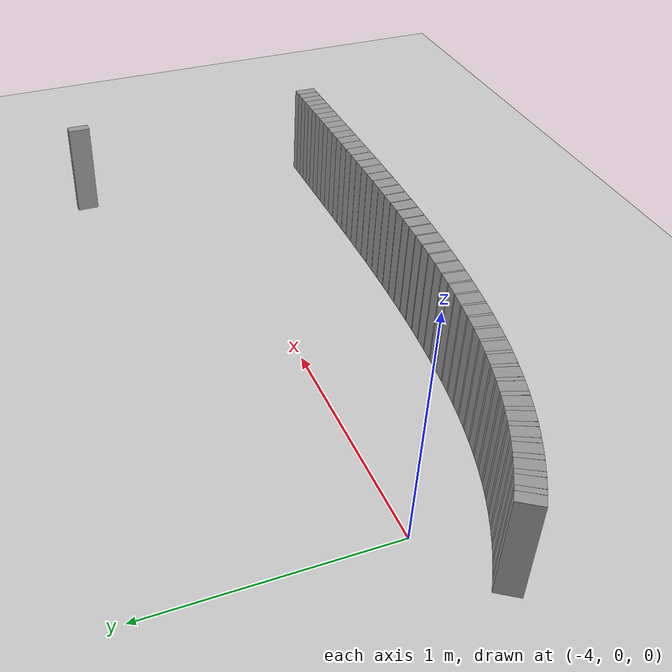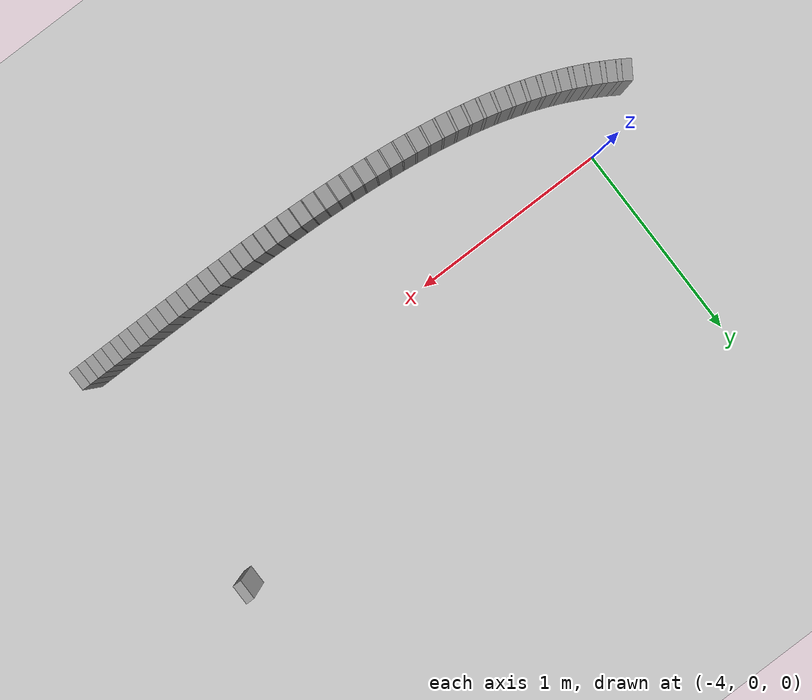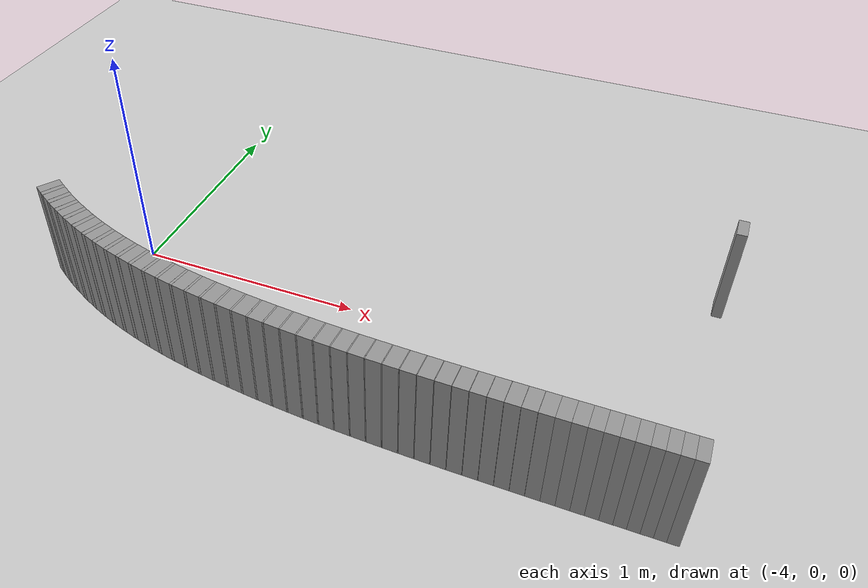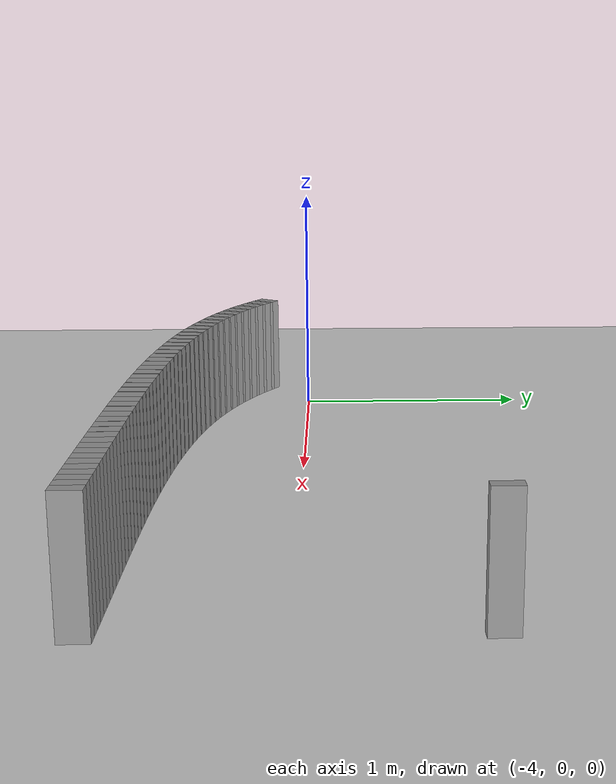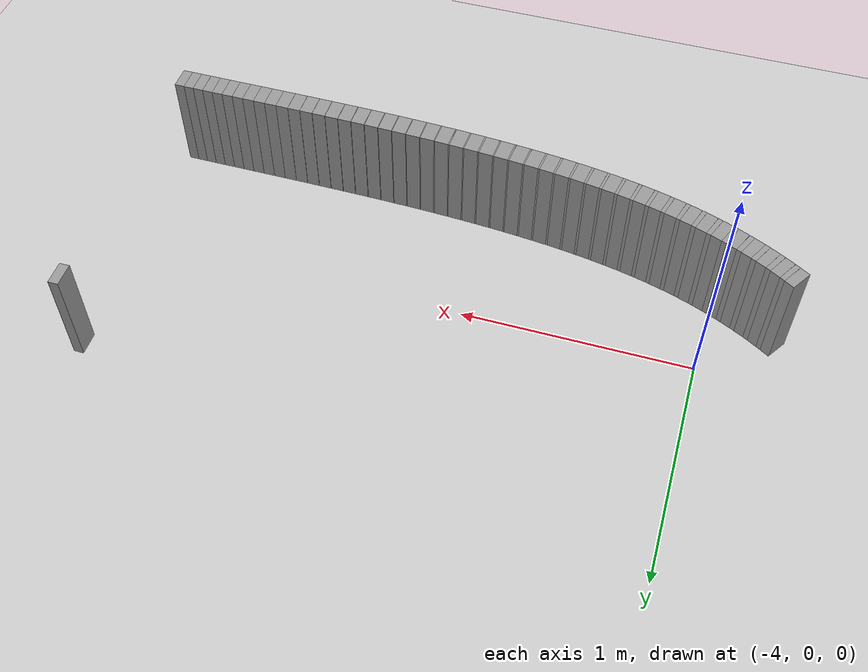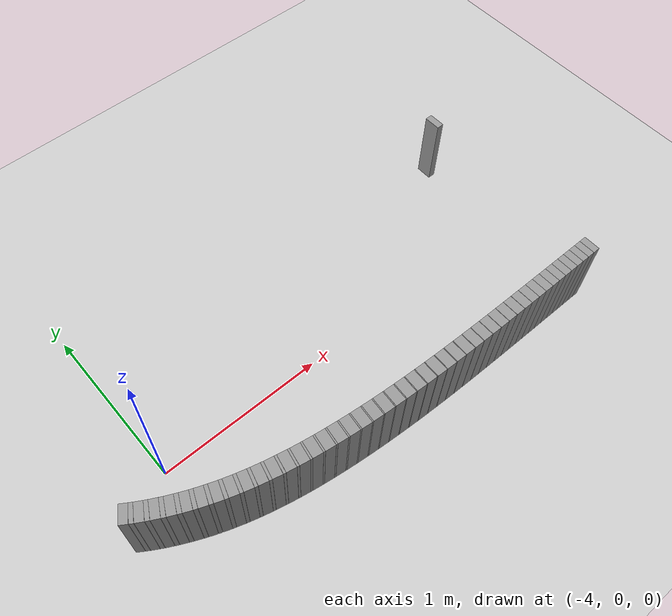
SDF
<sdf version="1.6">
 <world name="default">
  <include><uri>model://ground_plane</uri></include>
  <include><uri>model://sun</uri></include>
  <model name="wall_4_outward">
   <static>true</static>
   <link name="link">
    <collision name="collision">
     <geometry><box><size>0.043383684576640026 0.1 0.45</size></box></geometry>
    </collision>
    <visual name="visual">
     <geometry><box><size>0.043383684576640026 0.1 0.45</size></box></geometry>
     <material>
      <script><uri>file://media/materials/scripts/gazebo.material</uri><name>Gazebo/Gray</name></script>
     </material>
    </visual>
   </link>
   <pose>-1.5257309248788595 -0.5999960340481811 0.225 0 0 3.1415368300790276</pose>
  </model>
  <model name="wall_5_outward">
   <static>true</static>
   <link name="link">
    <collision name="collision">
     <geometry><box><size>0.0441648146529873 0.1 0.45</size></box></geometry>
    </collision>
    <visual name="visual">
     <geometry><box><size>0.0441648146529873 0.1 0.45</size></box></geometry>
     <material>
      <script><uri>file://media/materials/scripts/gazebo.material</uri><name>Gazebo/Gray</name></script>
     </material>
    </visual>
   </link>
   <pose>-1.5695051743696007 -0.5999928264040322 0.225 0 0 3.1415022318648753</pose>
  </model>
  <model name="wall_6_outward">
   <static>true</static>
   <link name="link">
    <collision name="collision">
     <geometry><box><size>0.04510750596771864 0.1 0.45</size></box></geometry>
    </collision>
    <visual name="visual">
     <geometry><box><size>0.04510750596771864 0.1 0.45</size></box></geometry>
     <material>
      <script><uri>file://media/materials/scripts/gazebo.material</uri><name>Gazebo/Gray</name></script>
     </material>
    </visual>
   </link>
   <pose>-1.614141334323414 -0.599987364044718 0.225 0 0 3.141438992690328</pose>
  </model>
  <model name="wall_7_outward">
   <static>true</static>
   <link name="link">
    <collision name="collision">
     <geometry><box><size>0.04617741219046398 0.1 0.45</size></box></geometry>
    </collision>
    <visual name="visual">
     <geometry><box><size>0.04617741219046398 0.1 0.45</size></box></geometry>
     <material>
      <script><uri>file://media/materials/scripts/gazebo.material</uri><name>Gazebo/Gray</name></script>
     </material>
    </visual>
   </link>
   <pose>-1.6597837924746228 -0.5999783710518132 0.225 0 0 3.141353256761811</pose>
  </model>
  <model name="wall_8_outward">
   <static>true</static>
   <link name="link">
    <collision name="collision">
     <geometry><box><size>0.04736522191237342 0.1 0.45</size></box></geometry>
    </collision>
    <visual name="visual">
     <geometry><box><size>0.04736522191237342 0.1 0.45</size></box></geometry>
     <material>
      <script><uri>file://media/materials/scripts/gazebo.material</uri><name>Gazebo/Gray</name></script>
     </material>
    </visual>
   </link>
   <pose>-1.7065551072864766 -0.599964198466842 0.225 0 0 3.1412276084420925</pose>
  </model>
  <model name="wall_9_outward">
   <static>true</static>
   <link name="link">
    <collision name="collision">
     <geometry><box><size>0.048638678998525996 0.1 0.45</size></box></geometry>
    </collision>
    <visual name="visual">
     <geometry><box><size>0.048638678998525996 0.1 0.45</size></box></geometry>
     <material>
      <script><uri>file://media/materials/scripts/gazebo.material</uri><name>Gazebo/Gray</name></script>
     </material>
    </visual>
   </link>
   <pose>-1.7545570525484675 -0.599942292262823 0.225 0 0 3.141047368112191</pose>
  </model>
  <model name="wall_10_outward">
   <static>true</static>
   <link name="link">
    <collision name="collision">
     <geometry><box><size>0.04997497708532629 0.1 0.45</size></box></geometry>
    </collision>
    <visual name="visual">
     <geometry><box><size>0.04997497708532629 0.1 0.45</size></box></geometry>
     <material>
      <script><uri>file://media/materials/scripts/gazebo.material</uri><name>Gazebo/Gray</name></script>
     </material>
    </visual>
   </link>
   <pose>-1.8038638688163893 -0.5999088391912553 0.225 0 0 3.140784565504666</pose>
  </model>
  <model name="wall_11_outward">
   <static>true</static>
   <link name="link">
    <collision name="collision">
     <geometry><box><size>0.05133867092761572 0.1 0.45</size></box></geometry>
    </collision>
    <visual name="visual">
     <geometry><box><size>0.05133867092761572 0.1 0.45</size></box></geometry>
     <material>
      <script><uri>file://media/materials/scripts/gazebo.material</uri><name>Gazebo/Gray</name></script>
     </material>
    </visual>
   </link>
   <pose>-1.854520667008353 -0.5998585400270326 0.225 0 0 3.1404197723674887</pose>
  </model>
  <model name="wall_12_outward">
   <static>true</static>
   <link name="link">
    <collision name="collision">
     <geometry><box><size>0.052701237121926356 0.1 0.45</size></box></geometry>
    </collision>
    <visual name="visual">
     <geometry><box><size>0.052701237121926356 0.1 0.45</size></box></geometry>
     <material>
      <script><uri>file://media/materials/scripts/gazebo.material</uri><name>Gazebo/Gray</name></script>
     </material>
    </visual>
   </link>
   <pose>-1.9065405670144142 -0.5997846567285423 0.225 0 0 3.1399313550561834</pose>
  </model>
  <model name="wall_13_outward">
   <static>true</static>
   <link name="link">
    <collision name="collision">
     <geometry><box><size>0.05404584894879231 0.1 0.45</size></box></geometry>
    </collision>
    <visual name="visual">
     <geometry><box><size>0.05404584894879231 0.1 0.45</size></box></geometry>
     <material>
      <script><uri>file://media/materials/scripts/gazebo.material</uri><name>Gazebo/Gray</name></script>
     </material>
    </visual>
   </link>
   <pose>-1.959914001399631 -0.5996783758555605 0.225 0 0 3.1392796284049505</pose>
  </model>
  <model name="wall_14_outward">
   <static>true</static>
   <link name="link">
    <collision name="collision">
     <geometry><box><size>0.0553569491289209 0.1 0.45</size></box></geometry>
    </collision>
    <visual name="visual">
     <geometry><box><size>0.0553569491289209 0.1 0.45</size></box></geometry>
     <material>
      <script><uri>file://media/materials/scripts/gazebo.material</uri><name>Gazebo/Gray</name></script>
     </material>
    </visual>
   </link>
   <pose>-2.0146151885653207 -0.599527967735671 0.225 0 0 3.138416769806492</pose>
  </model>
  <model name="wall_15_outward">
   <static>true</static>
   <link name="link">
    <collision name="collision">
     <geometry><box><size>0.0006705485486266078 0.1 0.45</size></box></geometry>
    </collision>
    <visual name="visual">
     <geometry><box><size>0.0006705485486266078 0.1 0.45</size></box></geometry>
     <material>
      <script><uri>file://media/materials/scripts/gazebo.material</uri><name>Gazebo/Gray</name></script>
     </material>
    </visual>
   </link>
   <pose>-2.0426287954751334 -0.5994388107695642 0.225 0 0 3.13785392868103</pose>
  </model>
  <model name="wall_16_outward">
   <static>true</static>
   <link name="link">
    <collision name="collision">
     <geometry><box><size>0.055938904773281645 0.1 0.45</size></box></geometry>
    </collision>
    <visual name="visual">
     <geometry><box><size>0.055938904773281645 0.1 0.45</size></box></geometry>
     <material>
      <script><uri>file://media/materials/scripts/gazebo.material</uri><name>Gazebo/Gray</name></script>
     </material>
    </visual>
   </link>
   <pose>-2.0709332615143916 -0.5993173584919708 0.225 0 0 3.137295138194895</pose>
  </model>
  <model name="wall_17_outward">
   <static>true</static>
   <link name="link">
    <collision name="collision">
     <geometry><box><size>0.0008475659731906803 0.1 0.45</size></box></geometry>
    </collision>
    <visual name="visual">
     <geometry><box><size>0.0008475659731906803 0.1 0.45</size></box></geometry>
     <material>
      <script><uri>file://media/materials/scripts/gazebo.material</uri><name>Gazebo/Gray</name></script>
     </material>
    </visual>
   </link>
   <pose>-2.099326233303797 -0.5991950391846201 0.225 0 0 3.136588833158594</pose>
  </model>
  <model name="wall_18_outward">
   <static>true</static>
   <link name="link">
    <collision name="collision">
     <geometry><box><size>0.056945785376173404 0.1 0.45</size></box></geometry>
    </collision>
    <visual name="visual">
     <geometry><box><size>0.056945785376173404 0.1 0.45</size></box></geometry>
     <material>
      <script><uri>file://media/materials/scripts/gazebo.material</uri><name>Gazebo/Gray</name></script>
     </material>
    </visual>
   </link>
   <pose>-2.128222439487447 -0.5990303357533464 0.225 0 0 3.1358825281221274</pose>
  </model>
  <model name="wall_19_outward">
   <static>true</static>
   <link name="link">
    <collision name="collision">
     <geometry><box><size>0.0010631498359540369 0.1 0.45</size></box></geometry>
    </collision>
    <visual name="visual">
     <geometry><box><size>0.0010631498359540369 0.1 0.45</size></box></geometry>
     <material>
      <script><uri>file://media/materials/scripts/gazebo.material</uri><name>Gazebo/Gray</name></script>
     </material>
    </visual>
   </link>
   <pose>-2.1572264313439287 -0.5988642465599217 0.225 0 0 3.13499656980958</pose>
  </model>
  <model name="wall_20_outward">
   <static>true</static>
   <link name="link">
    <collision name="collision">
     <geometry><box><size>0.057850876883226245 0.1 0.45</size></box></geometry>
    </collision>
    <visual name="visual">
     <geometry><box><size>0.057850876883226245 0.1 0.45</size></box></geometry>
     <material>
      <script><uri>file://media/materials/scripts/gazebo.material</uri><name>Gazebo/Gray</name></script>
     </material>
    </visual>
   </link>
   <pose>-2.186682623506554 -0.5986443209439221 0.225 0 0 3.134110611497067</pose>
  </model>
  <model name="wall_21_outward">
   <static>true</static>
   <link name="link">
    <collision name="collision">
     <geometry><box><size>0.0013077952588421914 0.1 0.45</size></box></geometry>
    </collision>
    <visual name="visual">
     <geometry><box><size>0.0013077952588421914 0.1 0.45</size></box></geometry>
     <material>
      <script><uri>file://media/materials/scripts/gazebo.material</uri><name>Gazebo/Gray</name></script>
     </material>
    </visual>
   </link>
   <pose>-2.2162611259214815 -0.5984222965572539 0.225 0 0 3.1330207818988822</pose>
  </model>
  <model name="wall_22_outward">
   <static>true</static>
   <link name="link">
    <collision name="collision">
     <geometry><box><size>0.058652713963058684 0.1 0.45</size></box></geometry>
    </collision>
    <visual name="visual">
     <geometry><box><size>0.058652713963058684 0.1 0.45</size></box></geometry>
     <material>
      <script><uri>file://media/materials/scripts/gazebo.material</uri><name>Gazebo/Gray</name></script>
     </material>
    </visual>
   </link>
   <pose>-2.24623998773471 -0.5981333534065125 0.225 0 0 3.1319309523008556</pose>
  </model>
  <model name="wall_23_outward">
   <static>true</static>
   <link name="link">
    <collision name="collision">
     <geometry><box><size>0.0015784932551432653 0.1 0.45</size></box></geometry>
    </collision>
    <visual name="visual">
     <geometry><box><size>0.0015784932551432653 0.1 0.45</size></box></geometry>
     <material>
      <script><uri>file://media/materials/scripts/gazebo.material</uri><name>Gazebo/Gray</name></script>
     </material>
    </visual>
   </link>
   <pose>-2.2763541750187057 -0.5978413518385081 0.225 0 0 3.130615540875607</pose>
  </model>
  <model name="wall_24_outward">
   <static>true</static>
   <link name="link">
    <collision name="collision">
     <geometry><box><size>0.05935485729162012 0.1 0.45</size></box></geometry>
    </collision>
    <visual name="visual">
     <geometry><box><size>0.05935485729162012 0.1 0.45</size></box></geometry>
     <material>
      <script><uri>file://media/materials/scripts/gazebo.material</uri><name>Gazebo/Gray</name></script>
     </material>
    </visual>
   </link>
   <pose>-2.3068185605488845 -0.5974678870427288 0.225 0 0 3.1293001294502623</pose>
  </model>
  <model name="wall_25_outward">
   <static>true</static>
   <link name="link">
    <collision name="collision">
     <geometry><box><size>0.001883697061145958 0.1 0.45</size></box></geometry>
    </collision>
    <visual name="visual">
     <geometry><box><size>0.001883697061145958 0.1 0.45</size></box></geometry>
     <material>
      <script><uri>file://media/materials/scripts/gazebo.material</uri><name>Gazebo/Gray</name></script>
     </material>
    </visual>
   </link>
   <pose>-2.3374355050399345 -0.5970900299794678 0.225 0 0 3.1277303812546817</pose>
  </model>
  <model name="wall_26_outward">
   <static>true</static>
   <link name="link">
    <collision name="collision">
     <geometry><box><size>0.059964425641846564 0.1 0.45</size></box></geometry>
    </collision>
    <visual name="visual">
     <geometry><box><size>0.059964425641846564 0.1 0.45</size></box></geometry>
     <material>
      <script><uri>file://media/materials/scripts/gazebo.material</uri><name>Gazebo/Gray</name></script>
     </material>
    </visual>
   </link>
   <pose>-2.36835590587882 -0.5966143064773279 0.225 0 0 3.126160633059009</pose>
  </model>
  <model name="wall_27_outward">
   <static>true</static>
   <link name="link">
    <collision name="collision">
     <geometry><box><size>0.002210183302396733 0.1 0.45</size></box></geometry>
    </collision>
    <visual name="visual">
     <geometry><box><size>0.002210183302396733 0.1 0.45</size></box></geometry>
     <material>
      <script><uri>file://media/materials/scripts/gazebo.material</uri><name>Gazebo/Gray</name></script>
     </material>
    </visual>
   </link>
   <pose>-2.3994394754633026 -0.5961325504897157 0.225 0 0 3.1243188125989483</pose>
  </model>
  <model name="wall_28_outward">
   <static>true</static>
   <link name="link">
    <collision name="collision">
     <geometry><box><size>0.060489131693299086 0.1 0.45</size></box></geometry>
    </collision>
    <visual name="visual">
     <geometry><box><size>0.060489131693299086 0.1 0.45</size></box></geometry>
     <material>
      <script><uri>file://media/materials/scripts/gazebo.material</uri><name>Gazebo/Gray</name></script>
     </material>
    </visual>
   </link>
   <pose>-2.4307834424508927 -0.5955353525893108 0.225 0 0 3.122476992139011</pose>
  </model>
  <model name="wall_29_outward">
   <static>true</static>
   <link name="link">
    <collision name="collision">
     <geometry><box><size>0.002559584406411668 0.1 0.45</size></box></geometry>
    </collision>
    <visual name="visual">
     <geometry><box><size>0.002559584406411668 0.1 0.45</size></box></geometry>
     <material>
      <script><uri>file://media/materials/scripts/gazebo.material</uri><name>Gazebo/Gray</name></script>
     </material>
    </visual>
   </link>
   <pose>-2.4623019859525974 -0.5949300511066826 0.225 0 0 3.120344003516274</pose>
  </model>
  <model name="wall_30_outward">
   <static>true</static>
   <link name="link">
    <collision name="collision">
     <geometry><box><size>0.060941438901204306 0.1 0.45</size></box></geometry>
    </collision>
    <visual name="visual">
     <geometry><box><size>0.060941438901204306 0.1 0.45</size></box></geometry>
     <material>
      <script><uri>file://media/materials/scripts/gazebo.material</uri><name>Gazebo/Gray</name></script>
     </material>
    </visual>
   </link>
   <pose>-2.4940438798935354 -0.5941904688582005 0.225 0 0 3.118211014893548</pose>
  </model>
  <model name="wall_31_outward">
   <static>true</static>
   <link name="link">
    <collision name="collision">
     <geometry><box><size>0.0029163367736469185 0.1 0.45</size></box></geometry>
    </collision>
    <visual name="visual">
     <geometry><box><size>0.0029163367736469185 0.1 0.45</size></box></geometry>
     <material>
      <script><uri>file://media/materials/scripts/gazebo.material</uri><name>Gazebo/Gray</name></script>
     </material>
    </visual>
   </link>
   <pose>-2.525963953194352 -0.5934404444711163 0.225 0 0 3.1157807318565482</pose>
  </model>
  <model name="wall_32_outward">
   <static>true</static>
   <link name="link">
    <collision name="collision">
     <geometry><box><size>0.06132942822464123 0.1 0.45</size></box></geometry>
    </collision>
    <visual name="visual">
     <geometry><box><size>0.06132942822464123 0.1 0.45</size></box></geometry>
     <material>
      <script><uri>file://media/materials/scripts/gazebo.material</uri><name>Gazebo/Gray</name></script>
     </material>
    </visual>
   </link>
   <pose>-2.558074121349807 -0.5925368865110254 0.225 0 0 3.113350448819497</pose>
  </model>
  <model name="wall_33_outward">
   <static>true</static>
   <link name="link">
    <collision name="collision">
     <geometry><box><size>0.0032893538338839828 0.1 0.45</size></box></geometry>
    </collision>
    <visual name="visual">
     <geometry><box><size>0.0032893538338839828 0.1 0.45</size></box></geometry>
     <material>
      <script><uri>file://media/materials/scripts/gazebo.material</uri><name>Gazebo/Gray</name></script>
     </material>
    </visual>
   </link>
   <pose>-2.5903704944098784 -0.5916200130742733 0.225 0 0 3.1106093171918787</pose>
  </model>
  <model name="wall_34_outward">
   <static>true</static>
   <link name="link">
    <collision name="collision">
     <geometry><box><size>0.06165995206838387 0.1 0.45</size></box></geometry>
    </collision>
    <visual name="visual">
     <geometry><box><size>0.06165995206838387 0.1 0.45</size></box></geometry>
     <material>
      <script><uri>file://media/materials/scripts/gazebo.material</uri><name>Gazebo/Gray</name></script>
     </material>
    </visual>
   </link>
   <pose>-2.6228268275893467 -0.5905295361831049 0.225 0 0 3.107868185564253</pose>
  </model>
  <model name="wall_35_outward">
   <static>true</static>
   <link name="link">
    <collision name="collision">
     <geometry><box><size>0.0036676270697501017 0.1 0.45</size></box></geometry>
    </collision>
    <visual name="visual">
     <geometry><box><size>0.0036676270697501017 0.1 0.45</size></box></geometry>
     <material>
      <script><uri>file://media/materials/scripts/gazebo.material</uri><name>Gazebo/Gray</name></script>
     </material>
    </visual>
   </link>
   <pose>-2.655471846462932 -0.5894225747429727 0.225 0 0 3.1048118249143806</pose>
  </model>
  <model name="wall_36_outward">
   <static>true</static>
   <link name="link">
    <collision name="collision">
     <geometry><box><size>0.06193463527221274 0.1 0.45</size></box></geometry>
    </collision>
    <visual name="visual">
     <geometry><box><size>0.06193463527221274 0.1 0.45</size></box></geometry>
     <material>
      <script><uri>file://media/materials/scripts/gazebo.material</uri><name>Gazebo/Gray</name></script>
     </material>
    </visual>
   </link>
   <pose>-2.688247168012766 -0.588121816147912 0.225 0 0 3.1017554642645035</pose>
  </model>
  <model name="wall_37_outward">
   <static>true</static>
   <link name="link">
    <collision name="collision">
     <geometry><box><size>0.004044527399908943 0.1 0.45</size></box></geometry>
    </collision>
    <visual name="visual">
     <geometry><box><size>0.004044527399908943 0.1 0.45</size></box></geometry>
     <material>
      <script><uri>file://media/materials/scripts/gazebo.material</uri><name>Gazebo/Gray</name></script>
     </material>
    </visual>
   </link>
   <pose>-2.7212102926181094 -0.5868011414801022 0.225 0 0 3.0983850183832597</pose>
  </model>
  <model name="wall_38_outward">
   <static>true</static>
   <link name="link">
    <collision name="collision">
     <geometry><box><size>0.06215217779699435 0.1 0.45</size></box></geometry>
    </collision>
    <visual name="visual">
     <geometry><box><size>0.06215217779699435 0.1 0.45</size></box></geometry>
     <material>
      <script><uri>file://media/materials/scripts/gazebo.material</uri><name>Gazebo/Gray</name></script>
     </material>
    </visual>
   </link>
   <pose>-2.754273053861048 -0.5852668501706966 0.225 0 0 3.095014572502016</pose>
  </model>
  <model name="wall_39_outward">
   <static>true</static>
   <link name="link">
    <collision name="collision">
     <geometry><box><size>0.004445168200415039 0.1 0.45</size></box></geometry>
    </collision>
    <visual name="visual">
     <geometry><box><size>0.004445168200415039 0.1 0.45</size></box></geometry>
     <material>
      <script><uri>file://media/materials/scripts/gazebo.material</uri><name>Gazebo/Gray</name></script>
     </material>
    </visual>
   </link>
   <pose>-2.7875352137830705 -0.5837081991407861 0.225 0 0 3.091310257196605</pose>
  </model>
  <model name="wall_40_outward">
   <static>true</static>
   <link name="link">
    <collision name="collision">
     <geometry><box><size>0.06230582462110974 0.1 0.45</size></box></geometry>
    </collision>
    <visual name="visual">
     <geometry><box><size>0.06230582462110974 0.1 0.45</size></box></geometry>
     <material>
      <script><uri>file://media/materials/scripts/gazebo.material</uri><name>Gazebo/Gray</name></script>
     </material>
    </visual>
   </link>
   <pose>-2.820862513515334 -0.5819154629320087 0.225 0 0 3.0876059418911894</pose>
  </model>
  <model name="wall_41_outward">
   <static>true</static>
   <link name="link">
    <collision name="collision">
     <geometry><box><size>0.004854494600850982 0.1 0.45</size></box></geometry>
    </collision>
    <visual name="visual">
     <geometry><box><size>0.004854494600850982 0.1 0.45</size></box></geometry>
     <material>
      <script><uri>file://media/materials/scripts/gazebo.material</uri><name>Gazebo/Gray</name></script>
     </material>
    </visual>
   </link>
   <pose>-2.854393199548847 -0.5800936571971181 0.225 0 0 3.0835605186896116</pose>
  </model>
  <model name="wall_42_outward">
   <static>true</static>
   <link name="link">
    <collision name="collision">
     <geometry><box><size>0.06238467672611344 0.1 0.45</size></box></geometry>
    </collision>
    <visual name="visual">
     <geometry><box><size>0.06238467672611344 0.1 0.45</size></box></geometry>
     <material>
      <script><uri>file://media/materials/scripts/gazebo.material</uri><name>Gazebo/Gray</name></script>
     </material>
    </visual>
   </link>
   <pose>-2.887948616742678 -0.5780177771233033 0.225 0 0 3.0795150954880683</pose>
  </model>
  <model name="wall_43_outward">
   <static>true</static>
   <link name="link">
    <collision name="collision">
     <geometry><box><size>0.005299424687438247 0.1 0.45</size></box></geometry>
    </collision>
    <visual name="visual">
     <geometry><box><size>0.005299424687438247 0.1 0.45</size></box></geometry>
     <material>
      <script><uri>file://media/materials/scripts/gazebo.material</uri><name>Gazebo/Gray</name></script>
     </material>
    </visual>
   </link>
   <pose>-2.9217247294003696 -0.5759066168134261 0.225 0 0 3.0750988938938053</pose>
  </model>
  <model name="wall_44_outward">
   <static>true</static>
   <link name="link">
    <collision name="collision">
     <geometry><box><size>0.06237431622302927 0.1 0.45</size></box></geometry>
    </collision>
    <visual name="visual">
     <geometry><box><size>0.06237431622302927 0.1 0.45</size></box></geometry>
     <material>
      <script><uri>file://media/materials/scripts/gazebo.material</uri><name>Gazebo/Gray</name></script>
     </material>
    </visual>
   </link>
   <pose>-2.9554773691300147 -0.5735209299455013 0.225 0 0 3.0706826922995445</pose>
  </model>
  <model name="wall_45_outward">
   <static>true</static>
   <link name="link">
    <collision name="collision">
     <geometry><box><size>0.005775770505434381 0.1 0.45</size></box></geometry>
    </collision>
    <visual name="visual">
     <geometry><box><size>0.005775770505434381 0.1 0.45</size></box></geometry>
     <material>
      <script><uri>file://media/materials/scripts/gazebo.material</uri><name>Gazebo/Gray</name></script>
     </material>
    </visual>
   </link>
   <pose>-2.989465761757532 -0.5710928318450671 0.225 0 0 3.0658695316276923</pose>
  </model>
  <model name="wall_46_outward">
   <static>true</static>
   <link name="link">
    <collision name="collision">
     <geometry><box><size>0.06225901046842116 0.1 0.45</size></box></geometry>
    </collision>
    <visual name="visual">
     <geometry><box><size>0.06225901046842116 0.1 0.45</size></box></geometry>
     <material>
      <script><uri>file://media/materials/scripts/gazebo.material</uri><name>Gazebo/Gray</name></script>
     </material>
    </visual>
   </link>
   <pose>-3.023373976770284 -0.568370015736782 0.225 0 0 3.061056370955811</pose>
  </model>
  <model name="wall_47_outward">
   <static>true</static>
   <link name="link">
    <collision name="collision">
     <geometry><box><size>0.006323392954869769 0.1 0.45</size></box></geometry>
    </collision>
    <visual name="visual">
     <geometry><box><size>0.006323392954869769 0.1 0.45</size></box></geometry>
     <material>
      <script><uri>file://media/materials/scripts/gazebo.material</uri><name>Gazebo/Gray</name></script>
     </material>
    </visual>
   </link>
   <pose>-3.0575526465367204 -0.5655947112731657 0.225 0 0 3.0557868524395917</pose>
  </model>
  <model name="wall_48_outward">
   <static>true</static>
   <link name="link">
    <collision name="collision">
     <geometry><box><size>0.062023103240961795 0.1 0.45</size></box></geometry>
    </collision>
    <visual name="visual">
     <geometry><box><size>0.062023103240961795 0.1 0.45</size></box></geometry>
     <material>
      <script><uri>file://media/materials/scripts/gazebo.material</uri><name>Gazebo/Gray</name></script>
     </material>
    </visual>
   </link>
   <pose>-3.0915857354695184 -0.5625032681393521 0.225 0 0 3.0505173339234046</pose>
  </model>
  <model name="wall_49_outward">
   <static>true</static>
   <link name="link">
    <collision name="collision">
     <geometry><box><size>0.006940154993773211 0.1 0.45</size></box></geometry>
    </collision>
    <visual name="visual">
     <geometry><box><size>0.006940154993773211 0.1 0.45</size></box></geometry>
     <material>
      <script><uri>file://media/materials/scripts/gazebo.material</uri><name>Gazebo/Gray</name></script>
     </material>
    </visual>
   </link>
   <pose>-3.1259225727219855 -0.5593472018242215 0.225 0 0 3.0447338391868275</pose>
  </model>
  <model name="wall_50_outward">
   <static>true</static>
   <link name="link">
    <collision name="collision">
     <geometry><box><size>0.06165475298780092 0.1 0.45</size></box></geometry>
    </collision>
    <visual name="visual">
     <geometry><box><size>0.06165475298780092 0.1 0.45</size></box></geometry>
     <material>
      <script><uri>file://media/materials/scripts/gazebo.material</uri><name>Gazebo/Gray</name></script>
     </material>
    </visual>
   </link>
   <pose>-3.1600415144204126 -0.5558529795206366 0.225 0 0 3.0389503444502166</pose>
  </model>
  <model name="wall_51_outward">
   <static>true</static>
   <link name="link">
    <collision name="collision">
     <geometry><box><size>0.00764403585908198 0.1 0.45</size></box></geometry>
    </collision>
    <visual name="visual">
     <geometry><box><size>0.00764403585908198 0.1 0.45</size></box></geometry>
     <material>
      <script><uri>file://media/materials/scripts/gazebo.material</uri><name>Gazebo/Gray</name></script>
     </material>
    </visual>
   </link>
   <pose>-3.1945059739458026 -0.5522785169656194 0.225 0 0 3.032580271487108</pose>
  </model>
  <model name="wall_52_outward">
   <static>true</static>
   <link name="link">
    <collision name="collision">
     <geometry><box><size>0.06114531068851354 0.1 0.45</size></box></geometry>
    </collision>
    <visual name="visual">
     <geometry><box><size>0.06114531068851354 0.1 0.45</size></box></geometry>
     <material>
      <script><uri>file://media/materials/scripts/gazebo.material</uri><name>Gazebo/Gray</name></script>
     </material>
    </visual>
   </link>
   <pose>-3.2286746769456647 -0.5483429682813677 0.225 0 0 3.0262101985240086</pose>
  </model>
  <model name="wall_53_outward">
   <static>true</static>
   <link name="link">
    <collision name="collision">
     <geometry><box><size>0.008449735489854945 0.1 0.45</size></box></geometry>
    </collision>
    <visual name="visual">
     <geometry><box><size>0.008449735489854945 0.1 0.45</size></box></geometry>
     <material>
      <script><uri>file://media/materials/scripts/gazebo.material</uri><name>Gazebo/Gray</name></script>
     </material>
    </visual>
   </link>
   <pose>-3.2632372962907796 -0.5443073081380969 0.225 0 0 3.01916869409305</pose>
  </model>
  <model name="wall_54_outward">
   <static>true</static>
   <link name="link">
    <collision name="collision">
     <geometry><box><size>0.060493335756579676 0.1 0.45</size></box></geometry>
    </collision>
    <visual name="visual">
     <geometry><box><size>0.060493335756579676 0.1 0.45</size></box></geometry>
     <material>
      <script><uri>file://media/materials/scripts/gazebo.material</uri><name>Gazebo/Gray</name></script>
     </material>
    </visual>
   </link>
   <pose>-3.2974240781017863 -0.5398864053386485 0.225 0 0 3.012127189662075</pose>
  </model>
  <model name="wall_55_outward">
   <static>true</static>
   <link name="link">
    <collision name="collision">
     <geometry><box><size>0.009380935572973717 0.1 0.45</size></box></geometry>
    </collision>
    <visual name="visual">
     <geometry><box><size>0.009380935572973717 0.1 0.45</size></box></geometry>
     <material>
      <script><uri>file://media/materials/scripts/gazebo.material</uri><name>Gazebo/Gray</name></script>
     </material>
    </visual>
   </link>
   <pose>-3.332063950443813 -0.5353395358258382 0.225 0 0 3.0043096637251563</pose>
  </model>
  <model name="wall_56_outward">
   <static>true</static>
   <link name="link">
    <collision name="collision">
     <geometry><box><size>0.059704334742487174 0.1 0.45</size></box></geometry>
    </collision>
    <visual name="visual">
     <geometry><box><size>0.059704334742487174 0.1 0.45</size></box></geometry>
     <material>
      <script><uri>file://media/materials/scripts/gazebo.material</uri><name>Gazebo/Gray</name></script>
     </material>
    </visual>
   </link>
   <pose>-3.366248750075924 -0.5303812538032311 0.225 0 0 2.996492137788262</pose>
  </model>
  <model name="wall_57_outward">
   <static>true</static>
   <link name="link">
    <collision name="collision">
     <geometry><box><size>0.010427968506543633 0.1 0.45</size></box></geometry>
    </collision>
    <visual name="visual">
     <geometry><box><size>0.010427968506543633 0.1 0.45</size></box></geometry>
     <material>
      <script><uri>file://media/materials/scripts/gazebo.material</uri><name>Gazebo/Gray</name></script>
     </material>
    </visual>
   </link>
   <pose>-3.4009396585631606 -0.5252661678853157 0.225 0 0 2.9878020546576125</pose>
  </model>
  <model name="wall_58_outward">
   <static>true</static>
   <link name="link">
    <collision name="collision">
     <geometry><box><size>0.05879118902414846 0.1 0.45</size></box></geometry>
    </collision>
    <visual name="visual">
     <geometry><box><size>0.05879118902414846 0.1 0.45</size></box></geometry>
     <material>
      <script><uri>file://media/materials/scripts/gazebo.material</uri><name>Gazebo/Gray</name></script>
     </material>
    </visual>
   </link>
   <pose>-3.4351005308195814 -0.5197122346274887 0.225 0 0 2.979111971526935</pose>
  </model>
  <model name="wall_59_outward">
   <static>true</static>
   <link name="link">
    <collision name="collision">
     <geometry><box><size>0.011593127245283651 0.1 0.45</size></box></geometry>
    </collision>
    <visual name="visual">
     <geometry><box><size>0.011593127245283651 0.1 0.45</size></box></geometry>
     <material>
      <script><uri>file://media/materials/scripts/gazebo.material</uri><name>Gazebo/Gray</name></script>
     </material>
    </visual>
   </link>
   <pose>-3.4698198481109355 -0.513964096044264 0.225 0 0 2.9694508818675995</pose>
  </model>
  <model name="wall_60_outward">
   <static>true</static>
   <link name="link">
    <collision name="collision">
     <geometry><box><size>0.0577722563220983 0.1 0.45</size></box></geometry>
    </collision>
    <visual name="visual">
     <geometry><box><size>0.0577722563220983 0.1 0.45</size></box></geometry>
     <material>
      <script><uri>file://media/materials/scripts/gazebo.material</uri><name>Gazebo/Gray</name></script>
     </material>
    </visual>
   </link>
   <pose>-3.503940804805164 -0.5077484870283014 0.225 0 0 2.959789792208271</pose>
  </model>
  <model name="wall_61_outward">
   <static>true</static>
   <link name="link">
    <collision name="collision">
     <geometry><box><size>0.012873151455368562 0.1 0.45</size></box></geometry>
    </collision>
    <visual name="visual">
     <geometry><box><size>0.012873151455368562 0.1 0.45</size></box></geometry>
     <material>
      <script><uri>file://media/materials/scripts/gazebo.material</uri><name>Gazebo/Gray</name></script>
     </material>
    </visual>
   </link>
   <pose>-3.538668518243627 -0.5012941914198967 0.225 0 0 2.949061960225425</pose>
  </model>
  <model name="wall_62_outward">
   <static>true</static>
   <link name="link">
    <collision name="collision">
     <geometry><box><size>0.05667238505356784 0.1 0.45</size></box></geometry>
    </collision>
    <visual name="visual">
     <geometry><box><size>0.05667238505356784 0.1 0.45</size></box></geometry>
     <material>
      <script><uri>file://media/materials/scripts/gazebo.material</uri><name>Gazebo/Gray</name></script>
     </material>
    </visual>
   </link>
   <pose>-3.5727390301677797 -0.49434259885946247 0.225 0 0 2.9383341282425786</pose>
  </model>
  <model name="wall_63_outward">
   <static>true</static>
   <link name="link">
    <collision name="collision">
     <geometry><box><size>0.014243865580523818 0.1 0.45</size></box></geometry>
    </collision>
    <visual name="visual">
     <geometry><box><size>0.014243865580523818 0.1 0.45</size></box></geometry>
     <material>
      <script><uri>file://media/materials/scripts/gazebo.material</uri><name>Gazebo/Gray</name></script>
     </material>
    </visual>
   </link>
   <pose>-3.60744965864608 -0.4871022613680493 0.225 0 0 2.926463961508001</pose>
  </model>
  <model name="wall_64_outward">
   <static>true</static>
   <link name="link">
    <collision name="collision">
     <geometry><box><size>0.05552128411459275 0.1 0.45</size></box></geometry>
    </collision>
    <visual name="visual">
     <geometry><box><size>0.05552128411459275 0.1 0.45</size></box></geometry>
     <material>
      <script><uri>file://media/materials/scripts/gazebo.material</uri><name>Gazebo/Gray</name></script>
     </material>
    </visual>
   </link>
   <pose>-3.6414558994153787 -0.47933426551100106 0.225 0 0 2.9145937947734084</pose>
  </model>
  <model name="wall_65_outward">
   <static>true</static>
   <link name="link">
    <collision name="collision">
     <geometry><box><size>0.01569068084477902 0.1 0.45</size></box></geometry>
    </collision>
    <visual name="visual">
     <geometry><box><size>0.01569068084477902 0.1 0.45</size></box></geometry>
     <material>
      <script><uri>file://media/materials/scripts/gazebo.material</uri><name>Gazebo/Gray</name></script>
     </material>
    </visual>
   </link>
   <pose>-3.676124713133195 -0.47122118310010824 0.225 0 0 2.9015178547847875</pose>
  </model>
  <model name="wall_66_outward">
   <static>true</static>
   <link name="link">
    <collision name="collision">
     <geometry><box><size>0.054348212653512744 0.1 0.45</size></box></geometry>
    </collision>
    <visual name="visual">
     <geometry><box><size>0.054348212653512744 0.1 0.45</size></box></geometry>
     <material>
      <script><uri>file://media/materials/scripts/gazebo.material</uri><name>Gazebo/Gray</name></script>
     </material>
    </visual>
   </link>
   <pose>-3.710053066858401 -0.4625498502531304 0.225 0 0 2.888441914796173</pose>
  </model>
  <model name="wall_67_outward">
   <static>true</static>
   <link name="link">
    <collision name="collision">
     <geometry><box><size>0.017147386046350514 0.1 0.45</size></box></geometry>
    </collision>
    <visual name="visual">
     <geometry><box><size>0.017147386046350514 0.1 0.45</size></box></geometry>
     <material>
      <script><uri>file://media/materials/scripts/gazebo.material</uri><name>Gazebo/Gray</name></script>
     </material>
    </visual>
   </link>
   <pose>-3.744629984522907 -0.4534782270140262 0.225 0 0 2.874151940085665</pose>
  </model>
  <model name="wall_68_outward">
   <static>true</static>
   <link name="link">
    <collision name="collision">
     <geometry><box><size>0.0531842612680924 0.1 0.45</size></box></geometry>
    </collision>
    <visual name="visual">
     <geometry><box><size>0.0531842612680924 0.1 0.45</size></box></geometry>
     <material>
      <script><uri>file://media/materials/scripts/gazebo.material</uri><name>Gazebo/Gray</name></script>
     </material>
    </visual>
   </link>
   <pose>-3.7784426408941103 -0.4438194037672025 0.225 0 0 2.8598619653751554</pose>
  </model>
  <model name="wall_69_outward">
   <static>true</static>
   <link name="link">
    <collision name="collision">
     <geometry><box><size>0.01858329937596084 0.1 0.45</size></box></geometry>
    </collision>
    <visual name="visual">
     <geometry><box><size>0.01858329937596084 0.1 0.45</size></box></geometry>
     <material>
      <script><uri>file://media/materials/scripts/gazebo.material</uri><name>Gazebo/Gray</name></script>
     </material>
    </visual>
   </link>
   <pose>-3.812870654060027 -0.4337051395560821 0.225 0 0 2.844375263519509</pose>
  </model>
  <model name="wall_70_outward">
   <static>true</static>
   <link name="link">
    <collision name="collision">
     <geometry><box><size>0.05205552827570588 0.1 0.45</size></box></geometry>
    </collision>
    <visual name="visual">
     <geometry><box><size>0.05205552827570588 0.1 0.45</size></box></geometry>
     <material>
      <script><uri>file://media/materials/scripts/gazebo.material</uri><name>Gazebo/Gray</name></script>
     </material>
    </visual>
   </link>
   <pose>-3.846520464827846 -0.42297698841826636 0.225 0 0 2.828888561663873</pose>
  </model>
  <model name="wall_71_outward">
   <static>true</static>
   <link name="link">
    <collision name="collision">
     <geometry><box><size>0.019926354903995046 0.1 0.45</size></box></geometry>
    </collision>
    <visual name="visual">
     <geometry><box><size>0.019926354903995046 0.1 0.45</size></box></geometry>
     <material>
      <script><uri>file://media/materials/scripts/gazebo.material</uri><name>Gazebo/Gray</name></script>
     </material>
    </visual>
   </link>
   <pose>-3.8807138299735504 -0.41174800146491436 0.225 0 0 2.8122825027032925</pose>
  </model>
  <model name="wall_72_outward">
   <static>true</static>
   <link name="link">
    <collision name="collision">
     <geometry><box><size>0.050985588879085476 0.1 0.45</size></box></geometry>
    </collision>
    <visual name="visual">
     <geometry><box><size>0.050985588879085476 0.1 0.45</size></box></geometry>
     <material>
      <script><uri>file://media/materials/scripts/gazebo.material</uri><name>Gazebo/Gray</name></script>
     </material>
    </visual>
   </link>
   <pose>-3.9141243764750295 -0.39988245105707354 0.225 0 0 2.795676443742711</pose>
  </model>
  <model name="wall_73_outward">
   <static>true</static>
   <link name="link">
    <collision name="collision">
     <geometry><box><size>0.02112662119554061 0.1 0.45</size></box></geometry>
    </collision>
    <visual name="visual">
     <geometry><box><size>0.02112662119554061 0.1 0.45</size></box></geometry>
     <material>
      <script><uri>file://media/materials/scripts/gazebo.material</uri><name>Gazebo/Gray</name></script>
     </material>
    </visual>
   </link>
   <pose>-3.9479801094473777 -0.3874829114751914 0.225 0 0 2.778070016468714</pose>
  </model>
  <model name="wall_74_outward">
   <static>true</static>
   <link name="link">
    <collision name="collision">
     <geometry><box><size>0.0499915237478525 0.1 0.45</size></box></geometry>
    </collision>
    <visual name="visual">
     <geometry><box><size>0.0499915237478525 0.1 0.45</size></box></geometry>
     <material>
      <script><uri>file://media/materials/scripts/gazebo.material</uri><name>Gazebo/Gray</name></script>
     </material>
    </visual>
   </link>
   <pose>-3.9810553058433245 -0.3744292846851145 0.225 0 0 2.760463589194698</pose>
  </model>
  <model name="wall_75_outward">
   <static>true</static>
   <link name="link">
    <collision name="collision">
     <geometry><box><size>0.022136759985626416 0.1 0.45</size></box></geometry>
    </collision>
    <visual name="visual">
     <geometry><box><size>0.022136759985626416 0.1 0.45</size></box></geometry>
     <material>
      <script><uri>file://media/materials/scripts/gazebo.material</uri><name>Gazebo/Gray</name></script>
     </material>
    </visual>
   </link>
   <pose>-4.014453976713538 -0.3608257206079777 0.225 0 0 2.7420152427682196</pose>
  </model>
  <model name="wall_76_outward">
   <static>true</static>
   <link name="link">
    <collision name="collision">
     <geometry><box><size>0.049082951246176926 0.1 0.45</size></box></geometry>
    </collision>
    <visual name="visual">
     <geometry><box><size>0.049082951246176926 0.1 0.45</size></box></geometry>
     <material>
      <script><uri>file://media/materials/scripts/gazebo.material</uri><name>Gazebo/Gray</name></script>
     </material>
    </visual>
   </link>
   <pose>-4.047078712957953 -0.3465570151256312 0.225 0 0 2.7235668963417234</pose>
  </model>
  <model name="wall_77_outward">
   <static>true</static>
   <link name="link">
    <collision name="collision">
     <geometry><box><size>0.022882816995690038 0.1 0.45</size></box></geometry>
    </collision>
    <visual name="visual">
     <geometry><box><size>0.022882816995690038 0.1 0.45</size></box></geometry>
     <material>
      <script><uri>file://media/materials/scripts/gazebo.material</uri><name>Gazebo/Gray</name></script>
     </material>
    </visual>
   </link>
   <pose>-4.079872717830406 -0.3317509662860877 0.225 0 0 2.7044967263204844</pose>
  </model>
  <model name="wall_78_outward">
   <static>true</static>
   <link name="link">
    <collision name="collision">
     <geometry><box><size>0.0482645980808601 0.1 0.45</size></box></geometry>
    </collision>
    <visual name="visual">
     <geometry><box><size>0.0482645980808601 0.1 0.45</size></box></geometry>
     <material>
      <script><uri>file://media/materials/scripts/gazebo.material</uri><name>Gazebo/Gray</name></script>
     </material>
    </visual>
   </link>
   <pose>-4.111903182359079 -0.3162771949052784 0.225 0 0 2.6854265562992383</pose>
  </model>
  <model name="wall_79_outward">
   <static>true</static>
   <link name="link">
    <collision name="collision">
     <geometry><box><size>0.02338751935189659 0.1 0.45</size></box></geometry>
    </collision>
    <visual name="visual">
     <geometry><box><size>0.02338751935189659 0.1 0.45</size></box></geometry>
     <material>
      <script><uri>file://media/materials/scripts/gazebo.material</uri><name>Gazebo/Gray</name></script>
     </material>
    </visual>
   </link>
   <pose>-4.143963564490024 -0.3002918522597333 0.225 0 0 2.665935722792221</pose>
  </model>
  <model name="wall_80_outward">
   <static>true</static>
   <link name="link">
    <collision name="collision">
     <geometry><box><size>0.047532075664200875 0.1 0.45</size></box></geometry>
    </collision>
    <visual name="visual">
     <geometry><box><size>0.047532075664200875 0.1 0.45</size></box></geometry>
     <material>
      <script><uri>file://media/materials/scripts/gazebo.material</uri><name>Gazebo/Gray</name></script>
     </material>
    </visual>
   </link>
   <pose>-4.175270925562654 -0.28364430566194965 0.225 0 0 2.646444889285204</pose>
  </model>
  <model name="wall_81_outward">
   <static>true</static>
   <link name="link">
    <collision name="collision">
     <geometry><box><size>0.02359095988027269 0.1 0.45</size></box></geometry>
    </collision>
    <visual name="visual">
     <geometry><box><size>0.02359095988027269 0.1 0.45</size></box></geometry>
     <material>
      <script><uri>file://media/materials/scripts/gazebo.material</uri><name>Gazebo/Gray</name></script>
     </material>
    </visual>
   </link>
   <pose>-4.206449261445806 -0.26654387981100847 0.225 0 0 2.6267844895160937</pose>
  </model>
  <model name="wall_82_outward">
   <static>true</static>
   <link name="link">
    <collision name="collision">
     <geometry><box><size>0.046879282712063715 0.1 0.45</size></box></geometry>
    </collision>
    <visual name="visual">
     <geometry><box><size>0.046879282712063715 0.1 0.45</size></box></geometry>
     <material>
      <script><uri>file://media/materials/scripts/gazebo.material</uri><name>Gazebo/Gray</name></script>
     </material>
    </visual>
   </link>
   <pose>-4.236886632326476 -0.2487963909410792 0.225 0 0 2.607124089746959</pose>
  </model>
  <model name="wall_83_outward">
   <static>true</static>
   <link name="link">
    <collision name="collision">
     <geometry><box><size>0.02354224695872809 0.1 0.45</size></box></geometry>
    </collision>
    <visual name="visual">
     <geometry><box><size>0.02354224695872809 0.1 0.45</size></box></geometry>
     <material>
      <script><uri>file://media/materials/scripts/gazebo.material</uri><name>Gazebo/Gray</name></script>
     </material>
    </visual>
   </link>
   <pose>-4.2670673020438 -0.23066302581095943 0.225 0 0 2.587504291909622</pose>
  </model>
  <model name="wall_84_outward">
   <static>true</static>
   <link name="link">
    <collision name="collision">
     <geometry><box><size>0.04629426729073114 0.1 0.45</size></box></geometry>
    </collision>
    <visual name="visual">
     <geometry><box><size>0.04629426729073114 0.1 0.45</size></box></geometry>
     <material>
      <script><uri>file://media/materials/scripts/gazebo.material</uri><name>Gazebo/Gray</name></script>
     </material>
    </visual>
   </link>
   <pose>-4.296518377678678 -0.21190632180514893 0.225 0 0 2.5678844940723087</pose>
  </model>
  <model name="wall_4_inward">
   <static>true</static>
   <link name="link">
    <collision name="collision">
     <geometry><box><size>0.04335334377282181 0.1 0.45</size></box></geometry>
    </collision>
    <visual name="visual">
     <geometry><box><size>0.04335334377282181 0.1 0.45</size></box></geometry>
     <material>
      <script><uri>file://media/materials/scripts/gazebo.material</uri><name>Gazebo/Gray</name></script>
     </material>
    </visual>
   </link>
   <pose>-1.5256687221012624 0.6000039642754387 0.225 0 0 3.141536826677868</pose>
  </model>
 </world>
</sdf>
